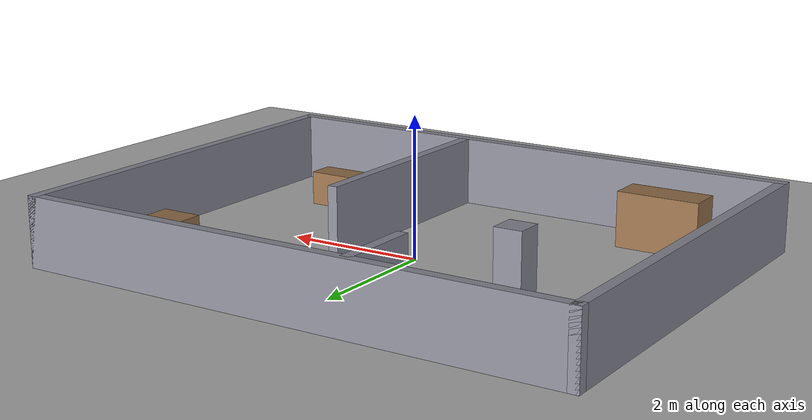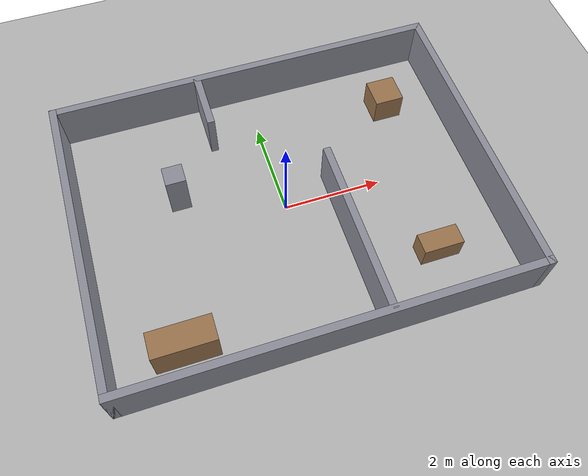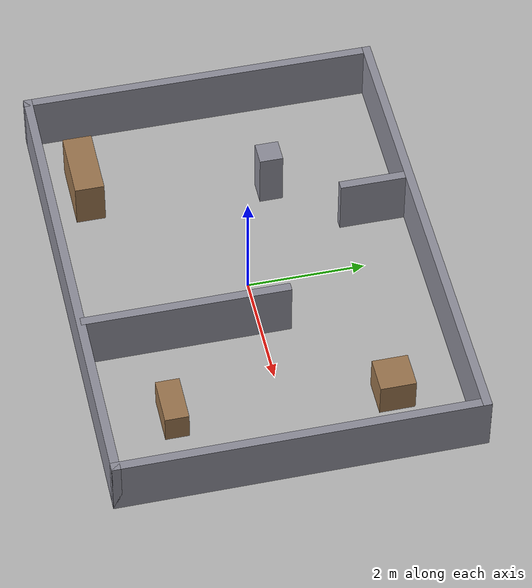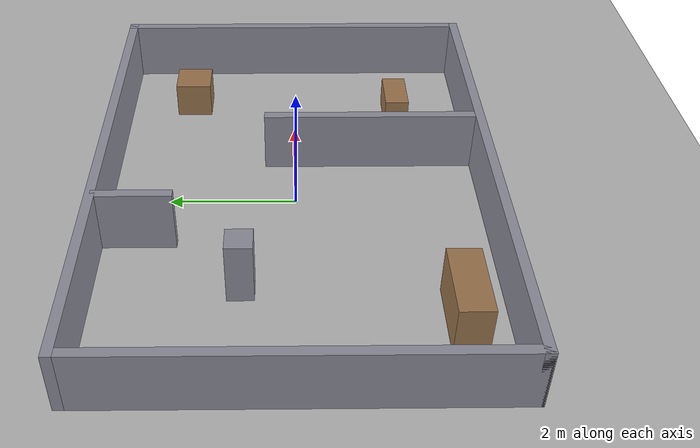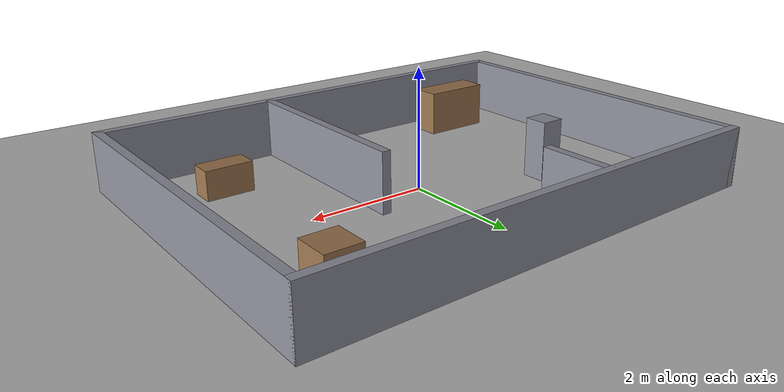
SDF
<?xml version="1.0"?>
<!-- 출입 통제 구역 시뮬레이션 월드 (8m x 6m). 원점 = 방 중앙. Gazebo Fortress 용.
     오른쪽 아래 구역은 x=1 칸막이로 나뉘어 있고 위쪽(y>0.5)으로만 통한다.
     이 파일은 기준 상태이므로, 침입자/물체는 나중에 런타임에 따로 스폰한다. -->
<sdf version="1.8">
  <world name="restricted_area">
    <physics name="1ms" type="ignored">
      <max_step_size>0.001</max_step_size>
      <real_time_factor>1.0</real_time_factor>
    </physics>

    <!-- Fortress 는 필요한 기능을 시스템 플러그인으로 직접 켜야 한다 -->
    <plugin filename="ignition-gazebo-physics-system" name="ignition::gazebo::systems::Physics"/>
    <!-- 로봇/물체 스폰(create) 서비스 -->
    <plugin filename="ignition-gazebo-user-commands-system" name="ignition::gazebo::systems::UserCommands"/>
    <!-- GUI 에 장면 전달 -->
    <plugin filename="ignition-gazebo-scene-broadcaster-system" name="ignition::gazebo::systems::SceneBroadcaster"/>
    <!-- 라이다(gpu_lidar) 같은 렌더링 센서 -->
    <plugin filename="ignition-gazebo-sensors-system" name="ignition::gazebo::systems::Sensors"/>

    <scene>
      <ambient>0.6 0.6 0.6 1</ambient>
      <background>0.8 0.8 0.8 1</background>
      <shadows>false</shadows>
    </scene>

    <light type="directional" name="sun">
      <cast_shadows>false</cast_shadows>
      <pose>0 0 10 0 0 0</pose>
      <diffuse>0.8 0.8 0.8 1</diffuse>
      <specular>0.2 0.2 0.2 1</specular>
      <direction>-0.5 0.1 -0.9</direction>
    </light>

    <model name="ground_plane">
      <static>true</static>
      <link name="link">
        <collision name="collision">
          <geometry><plane><normal>0 0 1</normal><size>20 20</size></plane></geometry>
        </collision>
        <visual name="visual">
          <geometry><plane><normal>0 0 1</normal><size>20 20</size></plane></geometry>
          <material><ambient>0.7 0.7 0.7 1</ambient><diffuse>0.7 0.7 0.7 1</diffuse></material>
        </visual>
      </link>
    </model>

    <model name="restricted_area">
      <static>true</static>
      <link name="wall_north">
        <pose>0.0 3.0 0.5 0 0 0</pose>
        <collision name="collision"><geometry><box><size>8.15 0.15 1.0</size></box></geometry></collision>
        <visual name="visual"><geometry><box><size>8.15 0.15 1.0</size></box></geometry>
          <material><ambient>0.55 0.55 0.6 1</ambient><diffuse>0.55 0.55 0.6 1</diffuse></material>
        </visual>
      </link>
      <link name="wall_south">
        <pose>0.0 -3.0 0.5 0 0 0</pose>
        <collision name="collision"><geometry><box><size>8.15 0.15 1.0</size></box></geometry></collision>
        <visual name="visual"><geometry><box><size>8.15 0.15 1.0</size></box></geometry>
          <material><ambient>0.55 0.55 0.6 1</ambient><diffuse>0.55 0.55 0.6 1</diffuse></material>
        </visual>
      </link>
      <link name="wall_east">
        <pose>4.0 0.0 0.5 0 0 0</pose>
        <collision name="collision"><geometry><box><size>0.15 6.15 1.0</size></box></geometry></collision>
        <visual name="visual"><geometry><box><size>0.15 6.15 1.0</size></box></geometry>
          <material><ambient>0.55 0.55 0.6 1</ambient><diffuse>0.55 0.55 0.6 1</diffuse></material>
        </visual>
      </link>
      <link name="wall_west">
        <pose>-4.0 0.0 0.5 0 0 0</pose>
        <collision name="collision"><geometry><box><size>0.15 6.15 1.0</size></box></geometry></collision>
        <visual name="visual"><geometry><box><size>0.15 6.15 1.0</size></box></geometry>
          <material><ambient>0.55 0.55 0.6 1</ambient><diffuse>0.55 0.55 0.6 1</diffuse></material>
        </visual>
      </link>
      <link name="divider">
        <pose>1.0 -1.25 0.5 0 0 0</pose>
        <collision name="collision"><geometry><box><size>0.15 3.5 1.0</size></box></geometry></collision>
        <visual name="visual"><geometry><box><size>0.15 3.5 1.0</size></box></geometry>
          <material><ambient>0.55 0.55 0.6 1</ambient><diffuse>0.55 0.55 0.6 1</diffuse></material>
        </visual>
      </link>
      <link name="stub_wall">
        <pose>-1.0 2.4 0.5 0 0 0</pose>
        <collision name="collision"><geometry><box><size>0.15 1.2 1.0</size></box></geometry></collision>
        <visual name="visual"><geometry><box><size>0.15 1.2 1.0</size></box></geometry>
          <material><ambient>0.55 0.55 0.6 1</ambient><diffuse>0.55 0.55 0.6 1</diffuse></material>
        </visual>
      </link>
      <link name="pillar">
        <pose>-2.0 0.8 0.5 0 0 0</pose>
        <collision name="collision"><geometry><box><size>0.4 0.4 1.0</size></box></geometry></collision>
        <visual name="visual"><geometry><box><size>0.4 0.4 1.0</size></box></geometry>
          <material><ambient>0.55 0.55 0.6 1</ambient><diffuse>0.55 0.55 0.6 1</diffuse></material>
        </visual>
      </link>
      <link name="cabinet">
        <pose>-2.6 -2.3 0.4 0 0 0</pose>
        <collision name="collision"><geometry><box><size>1.2 0.5 0.8</size></box></geometry></collision>
        <visual name="visual"><geometry><box><size>1.2 0.5 0.8</size></box></geometry>
          <material><ambient>0.6 0.45 0.3 1</ambient><diffuse>0.6 0.45 0.3 1</diffuse></material>
        </visual>
      </link>
      <link name="crate_ne">
        <pose>2.8 1.8 0.3 0 0 0</pose>
        <collision name="collision"><geometry><box><size>0.6 0.6 0.6</size></box></geometry></collision>
        <visual name="visual"><geometry><box><size>0.6 0.6 0.6</size></box></geometry>
          <material><ambient>0.6 0.45 0.3 1</ambient><diffuse>0.6 0.45 0.3 1</diffuse></material>
        </visual>
      </link>
      <link name="crate_se">
        <pose>2.5 -1.8 0.25 0 0 0</pose>
        <collision name="collision"><geometry><box><size>0.8 0.4 0.5</size></box></geometry></collision>
        <visual name="visual"><geometry><box><size>0.8 0.4 0.5</size></box></geometry>
          <material><ambient>0.6 0.45 0.3 1</ambient><diffuse>0.6 0.45 0.3 1</diffuse></material>
        </visual>
      </link>
    </model>
  </world>
</sdf>
